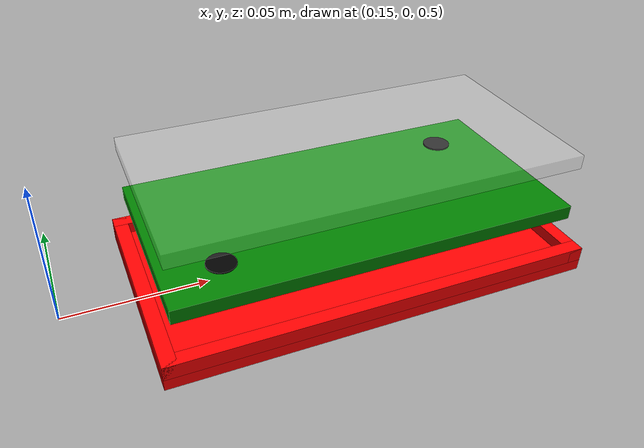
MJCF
<mujoco model="phone">

  <asset>
    <texture file="./textures/ele2_sk.png" type="2d" name="texplane" gridsize="5 5"/>
    <material name="pcb" reflectance="1" shininess="1.0" specular="0.0" texrepeat="1 1" texture="texplane" texuniform="true" />
  </asset>

  <default>
    <joint damping=".3" axis="0 1 0"/>
    <geom type="box" friction=".5"/>
    <default class="phone_wall">
      <geom rgba="1.0 0 0 1.0" type="box" friction=".5"/>
    </default>
  </default>
  <worldbody>
    <body name="cover" pos="0.25 0 0.5">
      <freejoint name="cover_root" />

      <geom size=".075 .04 .0025" pos="0 0 0" class="phone_wall" />

        <geom size=".0025 .04 .0025" pos="-0.0725 0 .004" class="phone_wall"/>
        <geom size=".0025 .04 .0025" pos=" 0.0725  0 .004" class="phone_wall"/>

        <geom size=".075 .0025 .0025" pos="0 -0.0375 .004" class="phone_wall"/>
        <geom size=".075 .0025 .0025" pos="0  0.0375 .004" class="phone_wall"/>

        <inertial pos="0 0 0" quat="1 0 0 0" mass="0.03" diaginertia="0.0001 0.0001 0.0001" />
    </body>

    <body name="pcb" pos="0.25 0 0.52">
      <freejoint name="pcb_root" />

      <geom size=".07 .035 .0025" pos="0 0 0" rgba="0.0 0.5 0 1.0" type="box" friction=".5"/>

      <inertial pos="0 0 0" quat="1 0 0 0" mass="0.01" diaginertia="0.0001 0.0001 0.0001" />

      <body name="screw1" pos="0.05 0.02 0.0025">

        <geom type="cylinder" friction=".5" size=".005 .0005" rgba="0.0 0.0 0.0 1.0" />

      </body>

      <body name="screw2" pos="-0.05 -0.02 0.0025">

        <geom type="cylinder" friction=".5" size=".005 .0005" rgba="0.0 0.0 0.0 1.0" />

      </body>

    </body>

    <body name="screen" pos="0.25 0 0.54">
      <freejoint name="screen_root" />

      <geom size=".07 .035 .0025" pos="0 0 0" rgba="1.0 1.0 1.0 0.2" type="box" friction=".5"/>
      <inertial pos="0 0 0" quat="1 0 0 0" mass="0.01" diaginertia="0.0001 0.0001 0.0001" />
    </body>

  </worldbody>

</mujoco>
